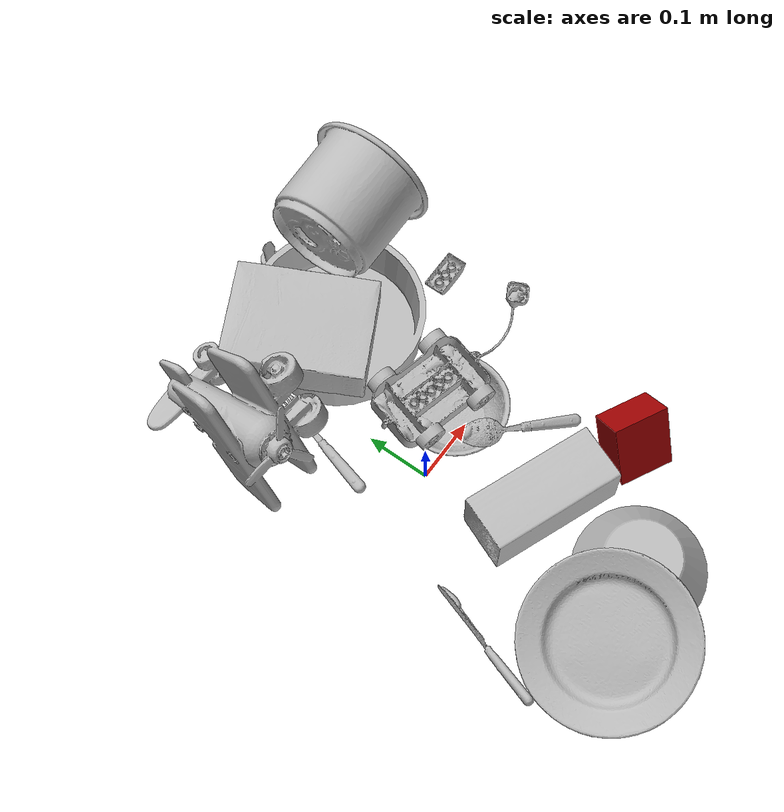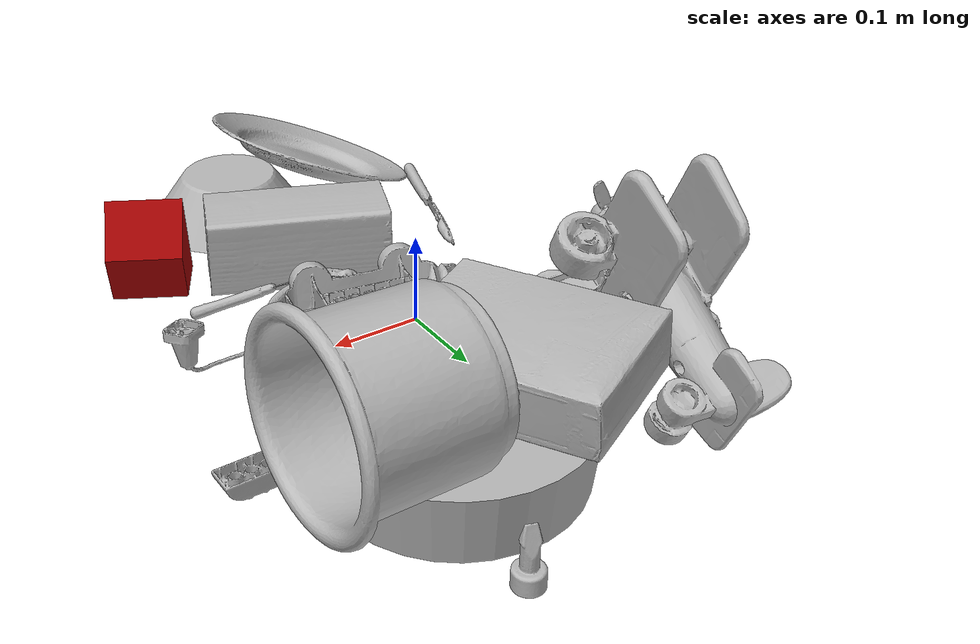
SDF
<sdf version="1.4">
  <world name="default">
    <light name="light1" type="point">
      <pose>0 0 1 0 0 0</pose>
      <diffuse>3 3 3 1</diffuse>
      <specular>3 3 3 1</specular>
    </light>
    <light name="light2" type="point">
      <pose>0 0.5 2 0 0 0</pose>
      <diffuse>1 1 1 1</diffuse>
      <specular>1 1 1 1</specular>
    </light>
    <light name="light3" type="point">
      <pose>0 0.5 2 0 0 0</pose>
      <diffuse>3 3 3 1</diffuse>
      <specular>3 3 3 1</specular>
    </light>
    <scene>
      <ambient>0.7 0.7 0.7</ambient>
    </scene>
    <model name="plate1">
      <link name="link_plate1">
        <collision name="default">
          <geometry>
            <mesh>
              <uri>model://plate/collision_meshes/collision.obj</uri>
              <scale>1.0 1.0 1.0</scale>
            </mesh>
          </geometry>
          <surface>
            <friction>
              <ode>
                <mu>0.5</mu>
                <mu2>0.5</mu2>
              </ode>
            </friction>
          <contact>
        <ode>
            <max_vel>0</max_vel>
            <min_depth>0.0001</min_depth>
            <kp>1e8</kp>
        </ode>
    </contact></surface>
        </collision>
        <visual name="default">
          <geometry>
            <mesh>
              <uri>model://plate/visual_meshes/visual.dae</uri>
              <scale>1.0 1.0 1.0</scale>
            </mesh>
          </geometry>
        </visual>
        <inertial>
          <mass>0.18013060092926025</mass>
          <pose>-0.0006044624606147408 0.0002782579977065325 -0.0010561981471255422 0.0022187543261248163 -0.003225499970721242 0.452618951787785</pose>
          <inertia>
            <ixx>0.00084265455</ixx>
            <iyy>0.000834595</iyy>
            <izz>0.0016481068</izz>
            <ixy>0</ixy>
            <ixz>0</ixz>
            <iyz>0</iyz>
          </inertia>
        </inertial>
      </link>
      <pose>-0.06262499839067459 -0.3568706512451172 0.04439903050661087 0.3965927158628334 -0.0721906969872113 -1.2424170692400576</pose>
    </model>
    <model name="plate2">
      <link name="link_plate2">
        <collision name="default">
          <geometry>
            <mesh>
              <uri>model://pan_tefal/collision_meshes/collision.obj</uri>
              <scale>1.0 1.0 1.0</scale>
            </mesh>
          </geometry>
          <surface>
            <friction>
              <ode>
                <mu>0.5</mu>
                <mu2>0.5</mu2>
              </ode>
            </friction>
          <contact>
        <ode>
            <max_vel>0</max_vel>
            <min_depth>0.0001</min_depth>
            <kp>1e8</kp>
        </ode>
    </contact></surface>
        </collision>
        <visual name="default">
          <geometry>
            <mesh>
              <uri>model://pan_tefal/visual_meshes/visual.dae</uri>
              <scale>1.0 1.0 1.0</scale>
            </mesh>
          </geometry>
        </visual>
        <inertial>
          <mass>1.1554980278015137</mass>
          <pose>-0.00018001958960667253 3.279018710600212e-05 -0.008514934219419956 0.0008190268412404128 -0.0003301434555644904 -0.33185316474518306</pose>
          <inertia>
            <ixx>0.007976347</ixx>
            <iyy>0.008027771</iyy>
            <izz>0.014682918</izz>
            <ixy>0</ixy>
            <ixz>0</ixz>
            <iyz>0</iyz>
          </inertia>
        </inertial>
      </link>
      <pose>0.11278477311134338 0.2441316843032837 0.038049645721912384 -5.063282288429901e-05 -7.771522054310387e-06 0.6165673837039383</pose>
    </model>
    <model name="bowl1">
      <link name="link_bowl1">
        <collision name="default">
          <geometry>
            <mesh>
              <uri>model://bowl/collision_meshes/collision.obj</uri>
              <scale>1.0 1.0 1.0</scale>
            </mesh>
          </geometry>
          <surface>
            <friction>
              <ode>
                <mu>0.5</mu>
                <mu2>0.5</mu2>
              </ode>
            </friction>
          <contact>
        <ode>
            <max_vel>0</max_vel>
            <min_depth>0.0001</min_depth>
            <kp>1e8</kp>
        </ode>
    </contact></surface>
        </collision>
        <visual name="default">
          <geometry>
            <mesh>
              <uri>model://bowl/visual_meshes/visual.dae</uri>
              <scale>1.0 1.0 1.0</scale>
            </mesh>
          </geometry>
        </visual>
        <inertial>
          <mass>0.08154366910457611</mass>
          <pose>0.0002044497523456812 -0.0010302083101123571 -0.0008042664267122746 -0.01576409235239578 0.014546819263349199 0.7140418673414882</pose>
          <inertia>
            <ixx>0.00018731231</ixx>
            <iyy>0.000183127</iyy>
            <izz>0.00031512365</izz>
            <ixy>0</ixy>
            <ixz>0</ixz>
            <iyz>0</iyz>
          </inertia>
        </inertial>
      </link>
      <pose>0.09948787838220596 0.019212795421481133 0.027791311964392662 4.9949636577190306e-05 0.0003017503915949569 1.008156334604253</pose>
    </model>
    <model name="bowl2">
      <link name="link_bowl2">
        <collision name="default">
          <geometry>
            <mesh>
              <uri>model://bowl_a/collision_meshes/collision.obj</uri>
              <scale>1.0 1.0 1.0</scale>
            </mesh>
          </geometry>
          <surface>
            <friction>
              <ode>
                <mu>0.5</mu>
                <mu2>0.5</mu2>
              </ode>
            </friction>
          <contact>
        <ode>
            <max_vel>0</max_vel>
            <min_depth>0.0001</min_depth>
            <kp>1e8</kp>
        </ode>
    </contact></surface>
        </collision>
        <visual name="default">
          <geometry>
            <mesh>
              <uri>model://bowl_a/visual_meshes/visual.dae</uri>
              <scale>1.0 1.0 1.0</scale>
            </mesh>
          </geometry>
        </visual>
        <inertial>
          <mass>0.4363987147808075</mass>
          <pose>0.0002786752884276211 4.73113359475974e-05 -0.0013765294570475817 -0.0009805318297205425 -0.0010938254473046036 -0.19123908587825994</pose>
          <inertia>
            <ixx>0.0012424473</ixx>
            <iyy>0.001250075</iyy>
            <izz>0.0022097398</izz>
            <ixy>0</ixy>
            <ixz>0</ixz>
            <iyz>0</iyz>
          </inertia>
        </inertial>
      </link>
      <pose>0.06268632411956787 -0.3307194411754608 0.02972022257745266 3.140990519182884 0.002625294207091573 1.6771129174944925</pose>
    </model>
    <model name="silverware1">
      <link name="link_silverware1">
        <collision name="default">
          <geometry>
            <mesh>
              <uri>model://spoon/collision_meshes/collision.obj</uri>
              <scale>1.0 1.0 1.0</scale>
            </mesh>
          </geometry>
          <surface>
            <friction>
              <ode>
                <mu>0.5</mu>
                <mu2>0.5</mu2>
              </ode>
            </friction>
          <contact>
        <ode>
            <max_vel>0</max_vel>
            <min_depth>0.0001</min_depth>
            <kp>1e8</kp>
        </ode>
    </contact></surface>
        </collision>
        <visual name="default">
          <geometry>
            <mesh>
              <uri>model://spoon/visual_meshes/visual.dae</uri>
              <scale>1.0 1.0 1.0</scale>
            </mesh>
          </geometry>
        </visual>
        <inertial>
          <mass>0.034700214862823486</mass>
          <pose>-0.00552632100880146 -0.0016034168656915426 -0.0007271654903888702 0.03521477925438783 -0.03906582568380071 0.006150611591128785</pose>
          <inertia>
            <ixx>1.9300821e-06</ixx>
            <iyy>0.00013203312</iyy>
            <izz>0.00013298499</izz>
            <ixy>0</ixy>
            <ixz>0</ixz>
            <iyz>0</iyz>
          </inertia>
        </inertial>
      </link>
      <pose>0.13307100534439087 -0.07663299888372421 0.04059983417391777 2.7166421106341194 -0.3893132198954125 2.5045939576312946</pose>
    </model>
    <model name="box1">
      <link name="link_box1">
        <collision name="default">
          <geometry>
            <mesh>
              <uri>model://cracker_box/collision_meshes/collision.obj</uri>
              <scale>1.0 1.0 1.0</scale>
            </mesh>
          </geometry>
          <surface>
            <friction>
              <ode>
                <mu>0.5</mu>
                <mu2>0.5</mu2>
              </ode>
            </friction>
          <contact>
        <ode>
            <max_vel>0</max_vel>
            <min_depth>0.0001</min_depth>
            <kp>1e8</kp>
        </ode>
    </contact></surface>
        </collision>
        <visual name="default">
          <geometry>
            <mesh>
              <uri>model://cracker_box/visual_meshes/visual.dae</uri>
              <scale>1.0 1.0 1.0</scale>
            </mesh>
          </geometry>
        </visual>
        <inertial>
          <mass>1.831273078918457</mass>
          <pose>0.000946414191275835 0.00025434247800149024 -0.0017029533628374338 -0.0003162074786093215 -0.01110648680647863 0.0025467950006863548</pose>
          <inertia>
            <ixx>0.0046579414</ixx>
            <iyy>0.0076911766</iyy>
            <izz>0.010976015</izz>
            <ixy>0</ixy>
            <ixz>0</ixz>
            <iyz>0</iyz>
          </inertia>
        </inertial>
      </link>
      <pose>0.04359183833003044 0.2547221779823303 0.10972001403570175 -3.094958418280467 -0.044508530969948334 2.0562569761463525</pose>
    </model>
    <model name="box2">
      <link name="link_box2">
        <collision name="default">
          <geometry>
            <mesh>
              <uri>model://wood_block/collision_meshes/collision.obj</uri>
              <scale>1.0 1.0 1.0</scale>
            </mesh>
          </geometry>
          <surface>
            <friction>
              <ode>
                <mu>0.5</mu>
                <mu2>0.5</mu2>
              </ode>
            </friction>
          <contact>
        <ode>
            <max_vel>0</max_vel>
            <min_depth>0.0001</min_depth>
            <kp>1e8</kp>
        </ode>
    </contact></surface>
        </collision>
        <visual name="default">
          <geometry>
            <mesh>
              <uri>model://wood_block/visual_meshes/visual.dae</uri>
              <scale>1.0 1.0 1.0</scale>
            </mesh>
          </geometry>
        </visual>
        <inertial>
          <mass>1.0038666725158691</mass>
          <pose>-5.813315510749817e-06 -0.000570809468626976 0.0002640858292579651 -0.05221020962952386 -0.005192696059900718 -0.006861377701075274</pose>
          <inertia>
            <ixx>0.0013433257</ixx>
            <iyy>0.0042435657</iyy>
            <izz>0.0042276927</izz>
            <ixy>0</ixy>
            <ixz>0</ixz>
            <iyz>0</iyz>
          </inertia>
        </inertial>
      </link>
      <pose>0.05697394907474518 -0.16246049106121063 0.045258522033691406 -0.005208485591701307 0.005718717009603356 2.7646516098332934</pose>
    </model>
    <model name="cup1">
      <link name="link_cup1">
        <collision name="default">
          <geometry>
            <mesh>
              <uri>model://i_cups/collision_meshes/collision.obj</uri>
              <scale>2.0 2.0 2.0</scale>
            </mesh>
          </geometry>
          <surface>
            <friction>
              <ode>
                <mu>0.5</mu>
                <mu2>0.5</mu2>
              </ode>
            </friction>
          <contact>
        <ode>
            <max_vel>0</max_vel>
            <min_depth>0.0001</min_depth>
            <kp>1e8</kp>
        </ode>
    </contact></surface>
        </collision>
        <visual name="default">
          <geometry>
            <mesh>
              <uri>model://i_cups/visual_meshes/visual.dae</uri>
              <scale>2.0 2.0 2.0</scale>
            </mesh>
          </geometry>
        </visual>
        <inertial>
          <mass>0.6038269996643066</mass>
          <pose>0.00022479970357380807 0.0003359453985467553 -0.001715799910016358 -0.02898255198870416 -0.03987340808103542 -0.3459203892901821</pose>
          <inertia>
            <ixx>0.0033440301</ixx>
            <iyy>0.003373493</iyy>
            <izz>0.0037374943</izz>
            <ixy>0</ixy>
            <ixz>0</ixz>
            <iyz>0</iyz>
          </inertia>
        </inertial>
      </link>
      <pose>0.22275210916996002 0.30591103434562683 0.1605103313922882 1.5165224855545394 1.191916386217807 1.539193547871322</pose>
    </model>
    <model name="silverware2">
      <link name="link_silverware2">
        <collision name="default">
          <geometry>
            <mesh>
              <uri>model://knife/collision_meshes/collision.obj</uri>
              <scale>1.0 1.0 1.0</scale>
            </mesh>
          </geometry>
          <surface>
            <friction>
              <ode>
                <mu>0.5</mu>
                <mu2>0.5</mu2>
              </ode>
            </friction>
          <contact>
        <ode>
            <max_vel>0</max_vel>
            <min_depth>0.0001</min_depth>
            <kp>1e8</kp>
        </ode>
    </contact></surface>
        </collision>
        <visual name="default">
          <geometry>
            <mesh>
              <uri>model://knife/visual_meshes/visual.dae</uri>
              <scale>1.0 1.0 1.0</scale>
            </mesh>
          </geometry>
        </visual>
        <inertial>
          <mass>0.01351180113852024</mass>
          <pose>-0.023785246536135674 0.0015275131445378065 5.062015407020226e-05 0.073058244240525 0.017248418380522417 -0.007409818685807072</pose>
          <inertia>
            <ixx>3.8351965e-07</ixx>
            <iyy>5.1910156e-05</iyy>
            <izz>5.2033673e-05</izz>
            <ixy>0</ixy>
            <ixz>0</ixz>
            <iyz>0</iyz>
          </inertia>
        </inertial>
      </link>
      <pose>-0.15649323165416718 -0.21454396843910217 0.009878290817141533 -1.4463621318588842 0.004230080434831214 1.2686161569725034</pose>
    </model>
    <model name="silverware3">
      <link name="link_silverware3">
        <collision name="default">
          <geometry>
            <mesh>
              <uri>model://fork/collision_meshes/collision.obj</uri>
              <scale>1.0 1.0 1.0</scale>
            </mesh>
          </geometry>
          <surface>
            <friction>
              <ode>
                <mu>0.5</mu>
                <mu2>0.5</mu2>
              </ode>
            </friction>
          <contact>
        <ode>
            <max_vel>0</max_vel>
            <min_depth>0.0001</min_depth>
            <kp>1e8</kp>
        </ode>
    </contact></surface>
        </collision>
        <visual name="default">
          <geometry>
            <mesh>
              <uri>model://fork/visual_meshes/visual.dae</uri>
              <scale>1.0 1.0 1.0</scale>
            </mesh>
          </geometry>
        </visual>
        <inertial>
          <mass>0.030749449506402016</mass>
          <pose>-0.029570044949650764 0.0004658822435885668 0.00032188615296036005 -0.013551266353778695 -0.010977839115777554 0.014453902178384312</pose>
          <inertia>
            <ixx>1.0779423e-06</ixx>
            <iyy>8.0277954e-05</iyy>
            <izz>8.076011e-05</izz>
            <ixy>0</ixy>
            <ixz>0</ixz>
            <iyz>0</iyz>
          </inertia>
        </inertial>
      </link>
      <pose>-0.048291537910699844 0.15322726964950562 0.005701075308024883 -0.17930808303675627 0.02515339864349141 1.3049423580670432</pose>
    </model>
    <model name="toy1">
      <link name="link_toy1">
        <collision name="default">
          <geometry>
            <mesh>
              <uri>model://e_toy_airplane/collision_meshes/collision.obj</uri>
              <scale>1.0 1.0 1.0</scale>
            </mesh>
          </geometry>
          <surface>
            <friction>
              <ode>
                <mu>0.5</mu>
                <mu2>0.5</mu2>
              </ode>
            </friction>
          <contact>
        <ode>
            <max_vel>0</max_vel>
            <min_depth>0.0001</min_depth>
            <kp>1e8</kp>
        </ode>
    </contact></surface>
        </collision>
        <visual name="default">
          <geometry>
            <mesh>
              <uri>model://e_toy_airplane/visual_meshes/visual.dae</uri>
              <scale>1.0 1.0 1.0</scale>
            </mesh>
          </geometry>
        </visual>
        <inertial>
          <mass>0.01770107075572014</mass>
          <pose>0.00011740486661437899 -2.248296732432209e-05 -0.011187206022441387 0.005518513464699853 0.009228302242376646 0.15041570361631973</pose>
          <inertia>
            <ixx>5.4025695e-06</ixx>
            <iyy>5.3473045e-06</iyy>
            <izz>1.6236847e-06</izz>
            <ixy>0</ixy>
            <ixz>0</ixz>
            <iyz>0</iyz>
          </inertia>
        </inertial>
      </link>
      <pose>0.14381279051303864 0.3976951539516449 0.03321196883916855 6.804005959060129e-05 -0.0001397398831441902 1.0881163032036973</pose>
    </model>
    <model name="toy2">
      <link name="link_toy2">
        <collision name="default">
          <geometry>
            <mesh>
              <uri>model://a_toy_airplane/collision_meshes/collision.obj</uri>
              <scale>1.0 1.0 1.0</scale>
            </mesh>
          </geometry>
          <surface>
            <friction>
              <ode>
                <mu>0.5</mu>
                <mu2>0.5</mu2>
              </ode>
            </friction>
          <contact>
        <ode>
            <max_vel>0</max_vel>
            <min_depth>0.0001</min_depth>
            <kp>1e8</kp>
        </ode>
    </contact></surface>
        </collision>
        <visual name="default">
          <geometry>
            <mesh>
              <uri>model://a_toy_airplane/visual_meshes/visual.dae</uri>
              <scale>1.0 1.0 1.0</scale>
            </mesh>
          </geometry>
        </visual>
        <inertial>
          <mass>1.6391528844833374</mass>
          <pose>0.02516508661210537 -0.003707319963723421 -0.0011962438002228737 -0.012016999892079352 -0.14663507149587088 0.004149061575203148</pose>
          <inertia>
            <ixx>0.0059525487</ixx>
            <iyy>0.008674072</iyy>
            <izz>0.01015627</izz>
            <ixy>0</ixy>
            <ixz>0</ixz>
            <iyz>0</iyz>
          </inertia>
        </inertial>
      </link>
      <pose>-0.12042823433876038 0.2595979869365692 0.1075182631611824 1.476644447607453 -0.4456017339266664 -1.4546479572695934</pose>
    </model>
    <model name="toy3">
      <link name="link_toy3">
        <collision name="default">
          <geometry>
            <mesh>
              <uri>model://g_lego_duplo/collision_meshes/collision.obj</uri>
              <scale>1.0 1.0 1.0</scale>
            </mesh>
          </geometry>
          <surface>
            <friction>
              <ode>
                <mu>0.5</mu>
                <mu2>0.5</mu2>
              </ode>
            </friction>
          <contact>
        <ode>
            <max_vel>0</max_vel>
            <min_depth>0.0001</min_depth>
            <kp>1e8</kp>
        </ode>
    </contact></surface>
        </collision>
        <visual name="default">
          <geometry>
            <mesh>
              <uri>model://g_lego_duplo/visual_meshes/visual.dae</uri>
              <scale>1.0 1.0 1.0</scale>
            </mesh>
          </geometry>
        </visual>
        <inertial>
          <mass>0.5092288255691528</mass>
          <pose>-0.05004768446087837 0.0017554641235619783 0.0038806775119155645 0.010963010010498962 0.03810823590924119 -0.09653024292159736</pose>
          <inertia>
            <ixx>0.00073787844</ixx>
            <iyy>0.002230844</iyy>
            <izz>0.002790868</izz>
            <ixy>0</ixy>
            <ixz>0</ixz>
            <iyz>0</iyz>
          </inertia>
        </inertial>
      </link>
      <pose>0.14630582928657532 0.04365336149930954 0.07728536427021027 -3.0260542367534886 0.04811925440747886 -0.2298797181249584</pose>
    </model>
    <model name="toy4">
      <link name="link_toy4">
        <collision name="default">
          <geometry>
            <mesh>
              <uri>model://a_lego_duplo/collision_meshes/collision.obj</uri>
              <scale>1.0 1.0 1.0</scale>
            </mesh>
          </geometry>
          <surface>
            <friction>
              <ode>
                <mu>0.5</mu>
                <mu2>0.5</mu2>
              </ode>
            </friction>
          <contact>
        <ode>
            <max_vel>0</max_vel>
            <min_depth>0.0001</min_depth>
            <kp>1e8</kp>
        </ode>
    </contact></surface>
        </collision>
        <visual name="default">
          <geometry>
            <mesh>
              <uri>model://a_lego_duplo/visual_meshes/visual.dae</uri>
              <scale>1.0 1.0 1.0</scale>
            </mesh>
          </geometry>
        </visual>
        <inertial>
          <mass>0.03161923587322235</mass>
          <pose>-0.00011337598698446527 0.00018517524586059153 0.00036926084430888295 -0.014116977368405541 -0.00012565500284871778 6.143069663272407e-05</pose>
          <inertia>
            <ixx>4.0538393e-06</ixx>
            <iyy>9.081488e-06</iyy>
            <izz>1.1249442e-05</izz>
            <ixy>0</ixy>
            <ixz>0</ixz>
            <iyz>0</iyz>
          </inertia>
        </inertial>
      </link>
      <pose>0.2782371938228607 0.16444553434848785 0.01212479267269373 -3.1412852275710716 -0.015583370635622418 -3.138929177801394</pose>
    </model>
    <model name="toy5">
      <link name="link_toy5">
        <collision name="default">
          <geometry>
            <mesh>
              <uri>model://prism/collision_meshes/collision.obj</uri>
              <scale>1.0 1.0 1.0</scale>
            </mesh>
          </geometry>
          <surface>
            <friction>
              <ode>
                <mu>0.5</mu>
                <mu2>0.5</mu2>
              </ode>
            </friction>
          <contact>
        <ode>
            <max_vel>0</max_vel>
            <min_depth>0.0001</min_depth>
            <kp>1e8</kp>
        </ode>
    </contact></surface>
        </collision>
        <visual name="default">
          <geometry>
            <mesh>
              <uri>model://prism/visual_meshes/visual.dae</uri>
              <scale>1.0 1.0 1.0</scale>
            </mesh>
          </geometry>
        </visual>
        <inertial>
          <mass>0.5650969743728638</mass>
          <pose>-9.85359656624496e-05 -4.96157269935793e-07 -0.0033869100734591484 0.0 0.006559179369129768 0.0</pose>
          <inertia>
            <ixx>0.00050999306</ixx>
            <iyy>0.00061633316</iyy>
            <izz>0.00075493456</izz>
            <ixy>0</ixy>
            <ixz>0</ixz>
            <iyz>0</iyz>
          </inertia>
        </inertial>
      </link>
      <pose>0.21765807271003723 -0.21393808722496033 0.04270760715007782 -3.1415925370887905 1.1942063423620684 -2.0495394417969246</pose>
    </model>
  <physics type="ode">
      <max_contacts>50</max_contacts>
      <ode>
        <solver>
          <type>quick</type>
          <iters>75</iters>
        </solver>
        <constraints>
          <contact_max_correcting_vel>0</contact_max_correcting_vel>
          <contact_surface_layer>0</contact_surface_layer>
        </constraints>
      </ode>
    </physics></world>
</sdf>
